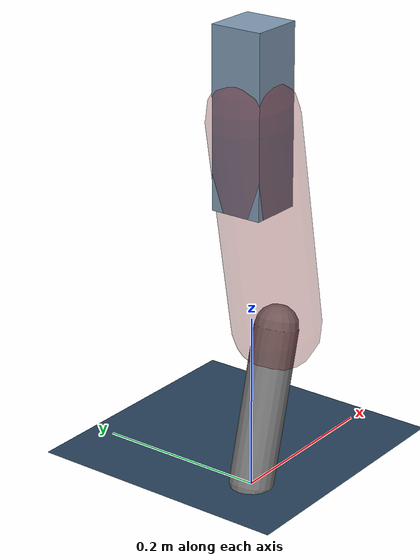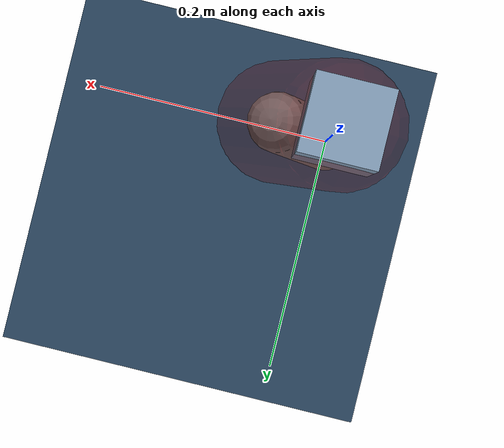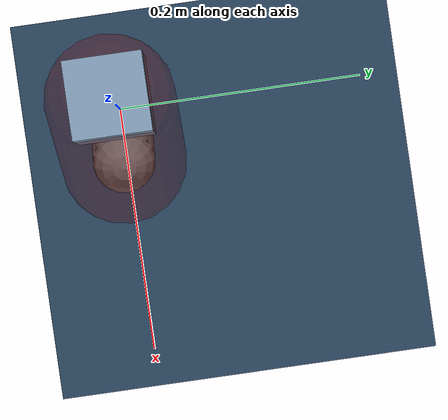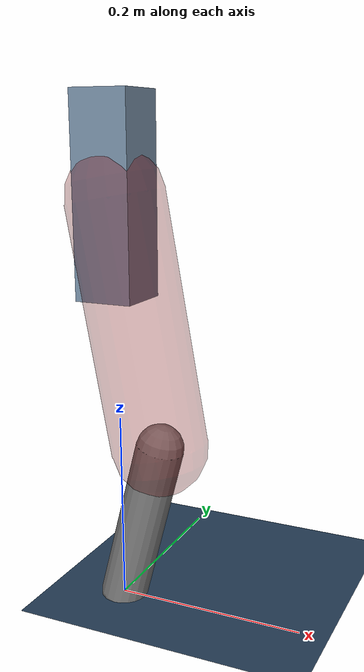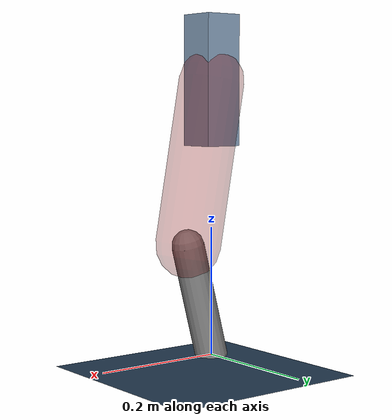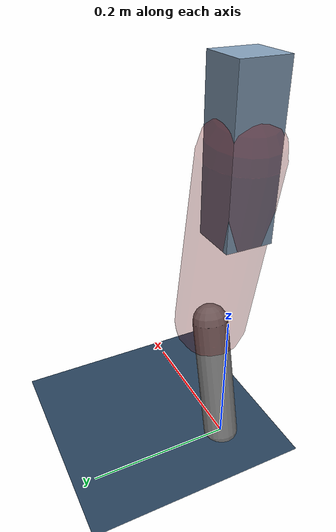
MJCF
<mujoco model="Hopper2D">
	<compiler inertiafromgeom="true" angle="radian" />
	<option timestep="0.001" integrator="implicit" cone="elliptic" solver="Newton" tolerance="1e-10" />

	<default>
		<geom contype="1" conaffinity="1" condim="3" friction="2 0.005 0.0001" solref="0.005 1" />
		<joint limited="true" damping="0.1" />
	</default>

	<asset>
		<texture name="skybox" type="skybox" builtin="gradient" rgb1=".4 .6 .8" rgb2="0 0 0" width="800" height="800" />
		<texture name="grid" type="2d" builtin="checker" rgb1=".1 .2 .3" rgb2=".2 .3 .4" width="300" height="300" mark="edge" markrgb=".2 .3 .4" />
		<material name="ground" texture="grid" texrepeat="1 1" texuniform="true" reflectance="0.1" />
		<material name="leg" rgba="0.5 0.6 0.7 1" />
	</asset>

	<worldbody>

		<geom name="floor" type="plane" size="5 5 0.25" material="ground" />

		<light directional="false" diffuse="0.8 0.8 0.8" specular="0.3 0.3 0.3" pos="0 0 2" dir="0 0 -1" />
		<light mode="targetbodycom" target="base" directional="false" diffuse="0.8 0.8 0.8" specular="0.3 0.3 0.3" pos="0 0 2" dir="0 0 -1" />

		<camera name="fixed" pos="0 -2 1" xyaxes="1 0 0 0 0 1" />
		<camera name="tracking" mode="trackcom" pos="0 -3 1" />

		<body name="root" pos="0 0 0.4262396490261741">
			<joint name="slide_x" type="slide" axis="1 0 0" range="-100 100" />
			<joint name="slide_z" type="slide" axis="0 0 1" range="0 10" />

			<body name="base" pos="0 0 0">
				<geom name="torso" type="box" size="0.03 0.03 0.1" mass="1.782" material="leg" />

				<body name="link1" pos="0 0 0" euler="0 1.390983829776258 0">
					<joint type="hinge" axis="0 -1 0" pos="0 0 0" name="hinge1" limited="true" range="-3.14 3.14" stiffness="0" damping="0.1" />
					<geom name="thigh" type="capsule" fromto="0 0 0 0.25559246980757483 0 0" size="0.05" rgba="0.5 0 0 0.3" mass="0.8709404214996945" />

					<body name="link2" pos="0.25559246980757483 0 0" euler="0 0.4356365774724666 0">
						<joint type="hinge" axis="0 -1 0" pos="0 0 0" name="hinge2" limited="true" range="-3.14 3.14" stiffness="0" damping="0.1" />
						<geom name="shank" type="capsule" fromto="0 0 0 0.1806471792185993 0 0" size="0.025" mass="0.38448246129673935" />

					</body>
				</body>
			</body>
		</body>
	</worldbody>

	<actuator>
		<motor name="torque1" joint="hinge1" ctrlrange="-54.27238478810051 54.27238478810051" ctrllimited="true" gear="1" />
		<motor name="torque2" joint="hinge2" ctrlrange="-59.6094030706545 59.6094030706545" ctrllimited="true" gear="1" />
	</actuator>
</mujoco>
